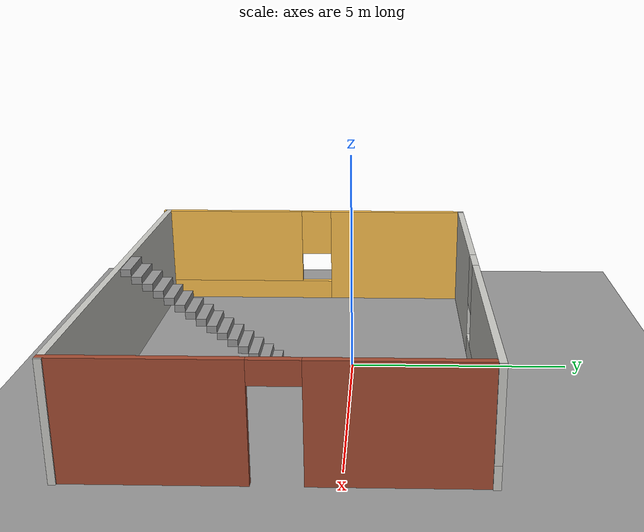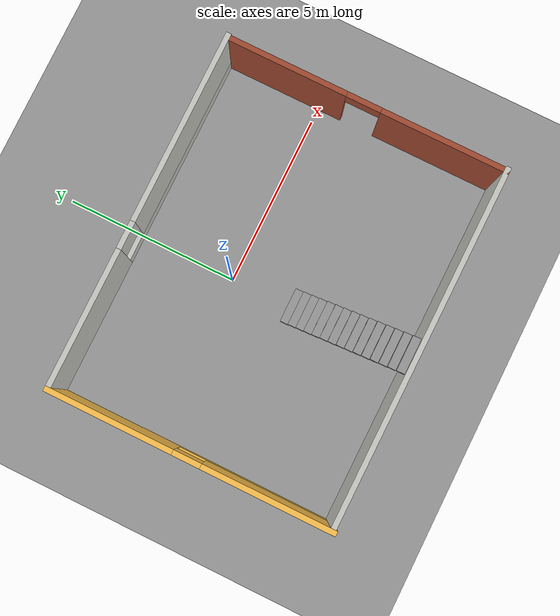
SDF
<sdf version="1.6">
 <world name="default">
  <light name="sun" type="directional">
   <pose>0 0 10 0 -0 0</pose>
   <diffuse>0.8 0.8 0.8 1</diffuse>
   <specular>0.2 0.2 0.2 1</specular>
   <attenuation>
    <range>1000</range>
    <constant>0.9</constant>
    <linear>0.01</linear>
    <quadratic>0.001</quadratic>
   </attenuation>
   <direction>0.5 0.1 -0.9</direction>
  </light>
  <scene><ambient>0.4 0.4 0.4 1</ambient><background>0.7 0.7 0.7 1</background><shadows>1</shadows></scene>
  <physics name="default_physics" default="0" type="ode">
   <max_step_size>0.01</max_step_size>
   <real_time_factor>1</real_time_factor>
   <real_time_update_rate>100</real_time_update_rate>
  </physics>
  <model name="ground_plane_0">
   <static>1</static>
   <link name="link">
    <collision name="collision">
     <geometry><plane><normal>0 0 1</normal><size>100 100</size></plane></geometry>
     <surface><friction><ode><mu>100</mu><mu2>50</mu2></ode></friction></surface>
    </collision>
    <visual name="visual">
     <cast_shadows>0</cast_shadows>
     <geometry><plane><normal>0 0 1</normal><size>100 100</size></plane></geometry>
     <material>
      <script><uri>file://media/materials/scripts/gazebo.material</uri><name>Gazebo/Grey</name></script>
     </material>
    </visual>
    <velocity_decay><linear>0</linear><angular>0</angular></velocity_decay>
   </link>
   <pose>0.497681 0 0 0 -0 0</pose>
  </model>
  <gravity>0 0 -9.8</gravity>
  <magnetic_field>6e-06 2.3e-05 -4.2e-05</magnetic_field>
  <atmosphere type="adiabatic"/>
  <spherical_coordinates>
   <surface_model>EARTH_WGS84</surface_model>
   <latitude_deg>0</latitude_deg>
   <longitude_deg>0</longitude_deg>
   <elevation>0</elevation>
   <heading_deg>0</heading_deg>
  </spherical_coordinates>
  <model name="Untitled">
   <pose>0.356192 -1.2381 0 0 -0 0</pose>
   <link name="Wall_17">
    <collision name="Wall_17_Collision">
     <geometry><box><size>10.4611 0.15 2.5</size></box></geometry>
     <pose>0 0 1.25 0 -0 0</pose>
    </collision>
    <visual name="Wall_17_Visual">
     <pose>0 0 1.25 0 -0 0</pose>
     <geometry><box><size>10.4611 0.15 2.5</size></box></geometry>
     <material>
      <script><uri>file://media/materials/scripts/gazebo.material</uri><name>Gazebo/CeilingTiled</name></script>
      <ambient>1 1 1 1</ambient>
     </material>
    </visual>
    <pose>0 -4.02485 0 0 0 -0.005206</pose>
   </link>
   <link name="Wall_19">
    <pose>-6.7e-05 4.05018 0 0 0 -0.000364</pose>
    <visual name="Wall_19_Visual_0">
     <pose>-3.1865 0 1.25 0 -0 0</pose>
     <geometry><box><size>4.08807 0.15 2.5</size></box></geometry>
     <material>
      <script><uri>file://media/materials/scripts/gazebo.material</uri><name>Gazebo/CeilingTiled</name></script>
      <ambient>0.996078 0.47451 0.0196078 1</ambient>
     </material>
    </visual>
    <collision name="Wall_19_Collision_0">
     <geometry><box><size>4.08807 0.15 2.5</size></box></geometry>
     <pose>-3.1865 0 1.25 0 -0 0</pose>
    </collision>
    <visual name="Wall_19_Visual_1">
     <pose>2.04404 0 0.25 0 -0 0</pose>
     <geometry><box><size>6.373 0.15 0.5</size></box></geometry>
     <material>
      <script><uri>file://media/materials/scripts/gazebo.material</uri><name>Gazebo/CeilingTiled</name></script>
      <ambient>0.996078 0.47451 0.0196078 1</ambient>
     </material>
    </visual>
    <collision name="Wall_19_Collision_1">
     <geometry><box><size>6.373 0.15 0.5</size></box></geometry>
     <pose>2.04404 0 0.25 0 -0 0</pose>
    </collision>
    <visual name="Wall_19_Visual_2">
     <pose>2.44403 0 1.5 0 -0 0</pose>
     <geometry><box><size>5.573 0.15 2</size></box></geometry>
     <material>
      <script><uri>file://media/materials/scripts/gazebo.material</uri><name>Gazebo/CeilingTiled</name></script>
      <ambient>0.996078 0.47451 0.0196078 1</ambient>
     </material>
    </visual>
    <collision name="Wall_19_Collision_2">
     <geometry><box><size>5.573 0.15 2</size></box></geometry>
     <pose>2.44403 0 1.5 0 -0 0</pose>
    </collision>
    <visual name="Wall_19_Visual_3">
     <pose>-0.742467 0 1.9 0 -0 0</pose>
     <geometry><box><size>0.8 0.15 1.2</size></box></geometry>
     <material>
      <script><uri>file://media/materials/scripts/gazebo.material</uri><name>Gazebo/CeilingTiled</name></script>
      <ambient>0.996078 0.47451 0.0196078 1</ambient>
     </material>
    </visual>
    <collision name="Wall_19_Collision_3">
     <geometry><box><size>0.8 0.15 1.2</size></box></geometry>
     <pose>-0.742467 0 1.9 0 -0 0</pose>
    </collision>
   </link>
   <link name="Wall_20">
    <pose>5.12029 -0.001693 0 0 0 -1.5708</pose>
    <visual name="Wall_20_Visual_0">
     <pose>-2.34359 0 1.25 0 -0 0</pose>
     <geometry><box><size>3.56282 0.15 2.5</size></box></geometry>
     <material>
      <script><uri>file://media/materials/scripts/gazebo.material</uri><name>Gazebo/Bricks</name></script>
      <ambient>1 1 1 1</ambient>
     </material>
    </visual>
    <collision name="Wall_20_Collision_0">
     <geometry><box><size>3.56282 0.15 2.5</size></box></geometry>
     <pose>-2.34359 0 1.25 0 -0 0</pose>
    </collision>
    <visual name="Wall_20_Visual_1">
     <pose>2.28141 0 1.25 0 -0 0</pose>
     <geometry><box><size>3.68718 0.15 2.5</size></box></geometry>
     <material>
      <script><uri>file://media/materials/scripts/gazebo.material</uri><name>Gazebo/Bricks</name></script>
      <ambient>1 1 1 1</ambient>
     </material>
    </visual>
    <collision name="Wall_20_Collision_1">
     <geometry><box><size>3.68718 0.15 2.5</size></box></geometry>
     <pose>2.28141 0 1.25 0 -0 0</pose>
    </collision>
    <visual name="Wall_20_Visual_2">
     <pose>-0.062178 0 2.25 0 -0 0</pose>
     <geometry><box><size>1 0.15 0.5</size></box></geometry>
     <material>
      <script><uri>file://media/materials/scripts/gazebo.material</uri><name>Gazebo/Bricks</name></script>
      <ambient>1 1 1 1</ambient>
     </material>
    </visual>
    <collision name="Wall_20_Collision_2">
     <geometry><box><size>1 0.15 0.5</size></box></geometry>
     <pose>-0.062178 0 2.25 0 -0 0</pose>
    </collision>
   </link>
   <link name="Wall_22">
    <pose>-5.1556 0.002056 0 0 0 -1.5708</pose>
    <visual name="Wall_22_Visual_0">
     <pose>-2.3059 0 1.25 0 -0 0</pose>
     <geometry><box><size>3.63821 0.15 2.5</size></box></geometry>
     <material>
      <script><uri>file://media/materials/scripts/gazebo.material</uri><name>Gazebo/Grey</name></script>
      <ambient>1 0.764706 0.305882 1</ambient>
     </material>
    </visual>
    <collision name="Wall_22_Collision_0">
     <geometry><box><size>3.63821 0.15 2.5</size></box></geometry>
     <pose>-2.3059 0 1.25 0 -0 0</pose>
    </collision>
    <visual name="Wall_22_Visual_1">
     <pose>1.8191 0 0.25 0 -0 0</pose>
     <geometry><box><size>4.61179 0.15 0.5</size></box></geometry>
     <material>
      <script><uri>file://media/materials/scripts/gazebo.material</uri><name>Gazebo/Grey</name></script>
      <ambient>1 0.764706 0.305882 1</ambient>
     </material>
    </visual>
    <collision name="Wall_22_Collision_1">
     <geometry><box><size>4.61179 0.15 0.5</size></box></geometry>
     <pose>1.8191 0 0.25 0 -0 0</pose>
    </collision>
    <visual name="Wall_22_Visual_2">
     <pose>2.2191 0 1.5 0 -0 0</pose>
     <geometry><box><size>3.81179 0.15 2</size></box></geometry>
     <material>
      <script><uri>file://media/materials/scripts/gazebo.material</uri><name>Gazebo/Grey</name></script>
      <ambient>1 0.764706 0.305882 1</ambient>
     </material>
    </visual>
    <collision name="Wall_22_Collision_2">
     <geometry><box><size>3.81179 0.15 2</size></box></geometry>
     <pose>2.2191 0 1.5 0 -0 0</pose>
    </collision>
    <visual name="Wall_22_Visual_3">
     <pose>-0.086794 0 1.9 0 -0 0</pose>
     <geometry><box><size>0.8 0.15 1.2</size></box></geometry>
     <material>
      <script><uri>file://media/materials/scripts/gazebo.material</uri><name>Gazebo/Grey</name></script>
      <ambient>1 0.764706 0.305882 1</ambient>
     </material>
    </visual>
    <collision name="Wall_22_Collision_3">
     <geometry><box><size>0.8 0.15 1.2</size></box></geometry>
     <pose>-0.086794 0 1.9 0 -0 0</pose>
    </collision>
   </link>
   <link name="Wall_4">
    <collision name="Wall_4_Collision">
     <geometry><box><size>0.15 0.15 2.5</size></box></geometry>
     <pose>0 0 1.25 0 -0 0</pose>
    </collision>
    <visual name="Wall_4_Visual">
     <pose>0 0 1.25 0 -0 0</pose>
     <geometry><box><size>0.15 0.15 2.5</size></box></geometry>
     <material>
      <script><uri>file://media/materials/scripts/gazebo.material</uri><name>Gazebo/Grey</name></script>
      <ambient>1 1 1 1</ambient>
     </material>
    </visual>
    <pose>-5.1556 4.05206 0 0 -0 0</pose>
   </link>
   <static>1</static>
  </model>
  <model name="stair-case(v0)">
   <pose>0.053859 -3.42068 0 0 -0 0</pose>
   <link name="Stairs_0">
    <visual name="Stairs_0_Visual_0">
     <pose>0 1.63333 0.083333 0 -0 0</pose>
     <geometry><box><size>1 0.233333 0.166667</size></box></geometry>
     <material>
      <script><uri>file://media/materials/scripts/gazebo.material</uri><name>Gazebo/Grey</name></script>
      <ambient>0 0 0 1</ambient>
     </material>
    </visual>
    <collision name="Stairs_0_Collision_0">
     <geometry><box><size>1 0.233333 0.166667</size></box></geometry>
     <pose>0 1.63333 0.083333 0 -0 0</pose>
    </collision>
    <visual name="Stairs_0_Visual_1">
     <pose>0 1.4 0.25 0 -0 0</pose>
     <geometry><box><size>1 0.233333 0.166667</size></box></geometry>
     <material>
      <script><uri>file://media/materials/scripts/gazebo.material</uri><name>Gazebo/Grey</name></script>
      <ambient>0 0 0 1</ambient>
     </material>
    </visual>
    <collision name="Stairs_0_Collision_1">
     <geometry><box><size>1 0.233333 0.166667</size></box></geometry>
     <pose>0 1.4 0.25 0 -0 0</pose>
    </collision>
    <visual name="Stairs_0_Visual_2">
     <pose>0 1.16667 0.416667 0 -0 0</pose>
     <geometry><box><size>1 0.233333 0.166667</size></box></geometry>
     <material>
      <script><uri>file://media/materials/scripts/gazebo.material</uri><name>Gazebo/Grey</name></script>
      <ambient>0 0 0 1</ambient>
     </material>
    </visual>
    <collision name="Stairs_0_Collision_2">
     <geometry><box><size>1 0.233333 0.166667</size></box></geometry>
     <pose>0 1.16667 0.416667 0 -0 0</pose>
    </collision>
    <visual name="Stairs_0_Visual_3">
     <pose>0 0.933333 0.583333 0 -0 0</pose>
     <geometry><box><size>1 0.233333 0.166667</size></box></geometry>
     <material>
      <script><uri>file://media/materials/scripts/gazebo.material</uri><name>Gazebo/Grey</name></script>
      <ambient>0 0 0 1</ambient>
     </material>
    </visual>
    <collision name="Stairs_0_Collision_3">
     <geometry><box><size>1 0.233333 0.166667</size></box></geometry>
     <pose>0 0.933333 0.583333 0 -0 0</pose>
    </collision>
    <visual name="Stairs_0_Visual_4">
     <pose>0 0.7 0.75 0 -0 0</pose>
     <geometry><box><size>1 0.233333 0.166667</size></box></geometry>
     <material>
      <script><uri>file://media/materials/scripts/gazebo.material</uri><name>Gazebo/Grey</name></script>
      <ambient>0 0 0 1</ambient>
     </material>
    </visual>
    <collision name="Stairs_0_Collision_4">
     <geometry><box><size>1 0.233333 0.166667</size></box></geometry>
     <pose>0 0.7 0.75 0 -0 0</pose>
    </collision>
    <visual name="Stairs_0_Visual_5">
     <pose>0 0.466667 0.916667 0 -0 0</pose>
     <geometry><box><size>1 0.233333 0.166667</size></box></geometry>
     <material>
      <script><uri>file://media/materials/scripts/gazebo.material</uri><name>Gazebo/Grey</name></script>
      <ambient>0 0 0 1</ambient>
     </material>
    </visual>
    <collision name="Stairs_0_Collision_5">
     <geometry><box><size>1 0.233333 0.166667</size></box></geometry>
     <pose>0 0.466667 0.916667 0 -0 0</pose>
    </collision>
    <visual name="Stairs_0_Visual_6">
     <pose>0 0.233334 1.08333 0 -0 0</pose>
     <geometry><box><size>1 0.233333 0.166667</size></box></geometry>
     <material>
      <script><uri>file://media/materials/scripts/gazebo.material</uri><name>Gazebo/Grey</name></script>
      <ambient>0 0 0 1</ambient>
     </material>
    </visual>
    <collision name="Stairs_0_Collision_6">
     <geometry><box><size>1 0.233333 0.166667</size></box></geometry>
     <pose>0 0.233334 1.08333 0 -0 0</pose>
    </collision>
    <visual name="Stairs_0_Visual_7">
     <pose>0 0 1.25 0 -0 0</pose>
     <geometry><box><size>1 0.233333 0.166667</size></box></geometry>
     <material>
      <script><uri>file://media/materials/scripts/gazebo.material</uri><name>Gazebo/Grey</name></script>
      <ambient>0 0 0 1</ambient>
     </material>
    </visual>
    <collision name="Stairs_0_Collision_7">
     <geometry><box><size>1 0.233333 0.166667</size></box></geometry>
     <pose>0 0 1.25 0 -0 0</pose>
    </collision>
    <visual name="Stairs_0_Visual_8">
     <pose>0 -0.233334 1.41667 0 -0 0</pose>
     <geometry><box><size>1 0.233333 0.166667</size></box></geometry>
     <material>
      <script><uri>file://media/materials/scripts/gazebo.material</uri><name>Gazebo/Grey</name></script>
      <ambient>0 0 0 1</ambient>
     </material>
    </visual>
    <collision name="Stairs_0_Collision_8">
     <geometry><box><size>1 0.233333 0.166667</size></box></geometry>
     <pose>0 -0.233334 1.41667 0 -0 0</pose>
    </collision>
    <visual name="Stairs_0_Visual_9">
     <pose>0 -0.466667 1.58333 0 -0 0</pose>
     <geometry><box><size>1 0.233333 0.166667</size></box></geometry>
     <material>
      <script><uri>file://media/materials/scripts/gazebo.material</uri><name>Gazebo/Grey</name></script>
      <ambient>0 0 0 1</ambient>
     </material>
    </visual>
    <collision name="Stairs_0_Collision_9">
     <geometry><box><size>1 0.233333 0.166667</size></box></geometry>
     <pose>0 -0.466667 1.58333 0 -0 0</pose>
    </collision>
    <visual name="Stairs_0_Visual_10">
     <pose>0 -0.7 1.75 0 -0 0</pose>
     <geometry><box><size>1 0.233333 0.166667</size></box></geometry>
     <material>
      <script><uri>file://media/materials/scripts/gazebo.material</uri><name>Gazebo/Grey</name></script>
      <ambient>0 0 0 1</ambient>
     </material>
    </visual>
    <collision name="Stairs_0_Collision_10">
     <geometry><box><size>1 0.233333 0.166667</size></box></geometry>
     <pose>0 -0.7 1.75 0 -0 0</pose>
    </collision>
    <visual name="Stairs_0_Visual_11">
     <pose>0 -0.933333 1.91667 0 -0 0</pose>
     <geometry><box><size>1 0.233333 0.166667</size></box></geometry>
     <material>
      <script><uri>file://media/materials/scripts/gazebo.material</uri><name>Gazebo/Grey</name></script>
      <ambient>0 0 0 1</ambient>
     </material>
    </visual>
    <collision name="Stairs_0_Collision_11">
     <geometry><box><size>1 0.233333 0.166667</size></box></geometry>
     <pose>0 -0.933333 1.91667 0 -0 0</pose>
    </collision>
    <visual name="Stairs_0_Visual_12">
     <pose>0 -1.16667 2.08333 0 -0 0</pose>
     <geometry><box><size>1 0.233333 0.166667</size></box></geometry>
     <material>
      <script><uri>file://media/materials/scripts/gazebo.material</uri><name>Gazebo/Grey</name></script>
      <ambient>0 0 0 1</ambient>
     </material>
    </visual>
    <collision name="Stairs_0_Collision_12">
     <geometry><box><size>1 0.233333 0.166667</size></box></geometry>
     <pose>0 -1.16667 2.08333 0 -0 0</pose>
    </collision>
    <visual name="Stairs_0_Visual_13">
     <pose>0 -1.4 2.25 0 -0 0</pose>
     <geometry><box><size>1 0.233333 0.166667</size></box></geometry>
     <material>
      <script><uri>file://media/materials/scripts/gazebo.material</uri><name>Gazebo/Grey</name></script>
      <ambient>0 0 0 1</ambient>
     </material>
    </visual>
    <collision name="Stairs_0_Collision_13">
     <geometry><box><size>1 0.233333 0.166667</size></box></geometry>
     <pose>0 -1.4 2.25 0 -0 0</pose>
    </collision>
    <visual name="Stairs_0_Visual_14">
     <pose>0 -1.63333 2.41667 0 -0 0</pose>
     <geometry><box><size>1 0.233333 0.166667</size></box></geometry>
     <material>
      <script><uri>file://media/materials/scripts/gazebo.material</uri><name>Gazebo/Grey</name></script>
      <ambient>0 0 0 1</ambient>
     </material>
    </visual>
    <collision name="Stairs_0_Collision_14">
     <geometry><box><size>1 0.233333 0.166667</size></box></geometry>
     <pose>0 -1.63333 2.41667 0 -0 0</pose>
    </collision>
   </link>
   <static>1</static>
  </model>
 </world>
</sdf>
